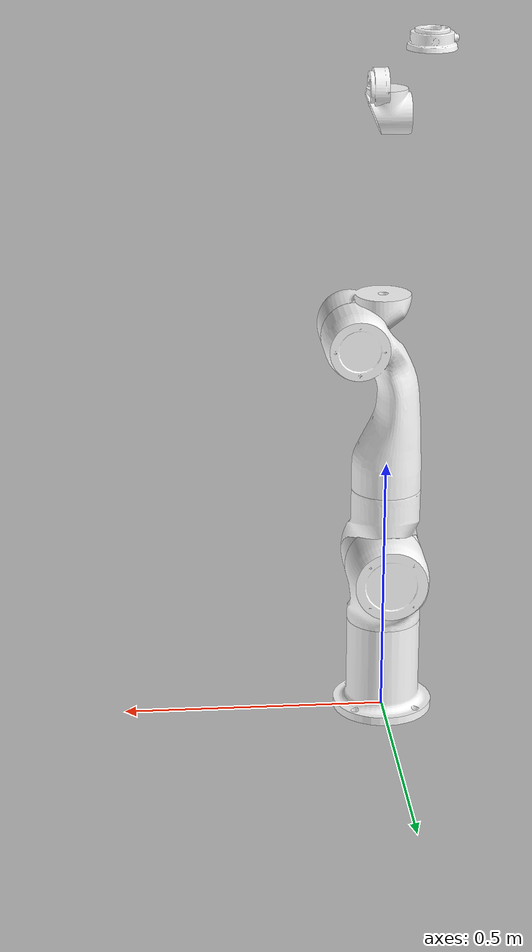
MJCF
<mujoco model="DianaMed">
    <compiler angle="radian"/>
    <visual>
            <headlight ambient="0.5 0.5 0.5"/>
    </visual>
    <option timestep="0.0005" integrator="implicitfast" gravity="0 0 -9.81" collision="dynamic">
        <flag sensornoise="disable" contact="enable" energy="enable" gravity="enable"/>
    </option>
    <asset>
        <mesh name="base_link" file="meshes/base_link.STL"/>
        <mesh name="link1" file="meshes/link1.STL"/>
        <mesh name="link2" file="meshes/link2.STL"/>
        <mesh name="link3" file="meshes/link3.STL"/>
        <mesh name="link4" file="meshes/link4.STL"/>
        <mesh name="link5" file="meshes/link5.STL"/>
        <mesh name="link6" file="meshes/link6.STL"/>
        <mesh name="link7" file="meshes/link7.STL"/>
    </asset>
    <worldbody>
        <body name="base_link">
            <geom type="mesh" contype="0" conaffinity="0" group="1" pos="0 0 0" rgba="1 1 1 1" mesh="base_link"/>
            <body name="link1" pos="8.7058e-05 -0.00063474 0.2985" quat="-3.67321e-06 1 0 0">
                <inertial pos="4.57641e-06 -0.0439746 0.0236145" quat="0.685631 -0.172505 0.172644 0.685818" mass="2.72698" diaginertia="0.0122186 0.0113371 0.00692616"/>
                <joint name="j1" pos="0 0 0" axis="0 0 1" limited="true" range="-2.56 2.56" damping="0.5"/>
                <geom type="mesh" contype="0" conaffinity="0" group="1" rgba="1 1 1 1" mesh="link1"/>
                <body name="link2" pos="0 0 -0.00092116" quat="0.707105 0.707108 0 0">
                    <inertial pos="8.26088e-06 -0.040728 -0.0363117" quat="0.596612 0.379593 -0.379572 0.596564" mass="3.18168" diaginertia="0.0189254 0.0180721 0.00757505"/>
                    <joint name="j2" pos="0 0 0" axis="0 0 -1" limited="true" range="-1.57 1.57" damping="1.0"/>
                    <geom type="mesh" contype="0" conaffinity="0" group="1" rgba="1 1 1 1" mesh="link2"/>
                    <body name="link3" pos="0 -0.45818 0.0005" quat="0.707105 -0.707108 0 0">
                        <inertial pos="0.0148079 -0.0159925 0.127198" quat="0.874546 -0.136758 -0.0611978 0.461217" mass="3.93616" diaginertia="0.0569273 0.0547312 0.00935482"/>
                        <joint name="j3" pos="0 0 0" axis="0 0 -1" limited="true" range="-2.56 2.56" stiffness="0.1" damping="0.5"/>
                        <geom type="mesh" contype="0" conaffinity="0" group="1" rgba="1 1 1 1" mesh="link3"/>
                        <body name="link4" pos="0.064454 0.0005 -0.00070508" quat="0.707105 0.707108 0 0">
                            <inertial pos="-0.0145884 -0.0117113 -0.0406158" quat="0.00473736 0.651043 0.564294 0.507635" mass="1.58469" diaginertia="0.00499445 0.00482606 0.00267104"/>
                            <joint name="j4" pos="0 0 0" axis="0 0 1" limited="true" range="0.0 3.05" stiffness="0.1" damping="0.5"/>
                            <geom type="mesh" contype="0" conaffinity="0" group="1" rgba="1 1 1 1" mesh="link4"/>
                            <body name="link5" pos="-0.052254 -0.45668 0.0005" quat="0.707105 -0.707108 0 0">
                                <inertial pos="-0.00209922 0.0288297 0.222845" quat="0.985159 0.138333 -0.00891494 0.101222" mass="1.92688" diaginertia="0.0293358 0.0290794 0.00210656"/>
                                <joint name="j5" pos="0 0 0" axis="0 0 -1" limited="true" range="-3.05 3.05" stiffness="0.1" damping="0.5"/>
                                <geom type="mesh" contype="0" conaffinity="0" group="1" rgba="1 1 1 1" mesh="link5"/>
                                <geom name="link5_collision" type="mesh" rgba="1 1 1 1" mesh="link5"/>
                                <body name="link6" pos="0 -0.005 -1.1713e-05" quat="-2.59734e-06 -2.59735e-06 -0.707108 -0.707105">
                                    <inertial pos="0.038358 -0.00071885 -0.0021112" quat="0.0131349 0.678937 -0.0198942 0.733809" mass="1.7304" diaginertia="0.005268 0.00492614 0.00345065"/>
                                    <joint name="j6" pos="0 0 0" axis="0 0 1" limited="true" range="-3.14 3.14" stiffness="0.1" damping="0.5"/>
                                    <geom type="mesh" contype="0" conaffinity="0" group="1" rgba="1 1 1 1" mesh="link6"/>
                                    <geom name="link6_collision" type="mesh" rgba="1 1 1 1" mesh="link6"/>
                                    <body name="link7" pos="0.076728 -0.1059 0" quat="0.707105 -0.707108 0 0">
                                        <joint name="j7" pos="0 0 0" axis="0 0 -1" limited="true" range="-3.14 3.14" damping="1"/>
                                        <inertial pos="0.00068467 1.5999e-05 0.020834" quat="0.000547318 0.708756 -0.000448023 0.705453" mass="0.16696" diaginertia="0.000143911 8.8902e-05 8.75358e-05"/>
                                        <geom type="mesh" contype="0" conaffinity="0" group="1" rgba="1 1 1 1" mesh="link7"/>
                                        <geom name="link7_collision" type="mesh" rgba="1 1 1 1" mesh="link7"/>
                                    </body>
                                </body>
                            </body>
                        </body>
                    </body>
                </body>
            </body>
        </body>
    </worldbody>
    <actuator>
        <motor name="a1" ctrllimited="true" ctrlrange="-400.0 400.0"  joint="j1"/>
        <motor name="a2" ctrllimited="true" ctrlrange="-400.0 400.0"  joint="j2"/>
        <motor name="a3" ctrllimited="true" ctrlrange="-400.0 400.0"  joint="j3"/>
        <motor name="a4" ctrllimited="true" ctrlrange="-400.0 400.0"  joint="j4"/>
        <motor name="a5" ctrllimited="true" ctrlrange="-400.0 400.0"  joint="j5"/>
        <motor name="a6" ctrllimited="true" ctrlrange="-400.0 400.0"  joint="j6"/>
        <motor name="a7" ctrllimited="true" ctrlrange="-400.0 400.0"  joint="j7"/>
    </actuator>
</mujoco>
